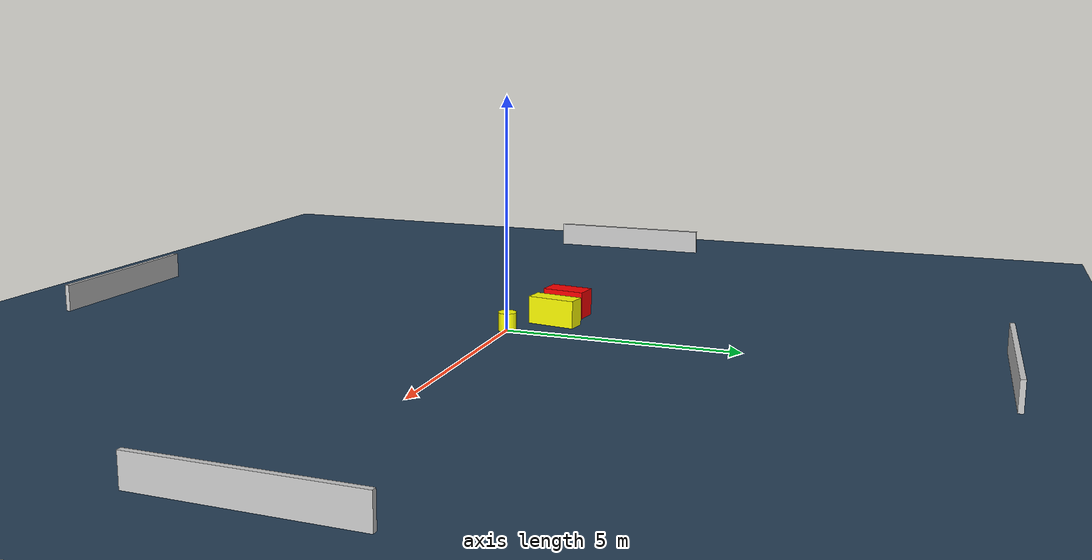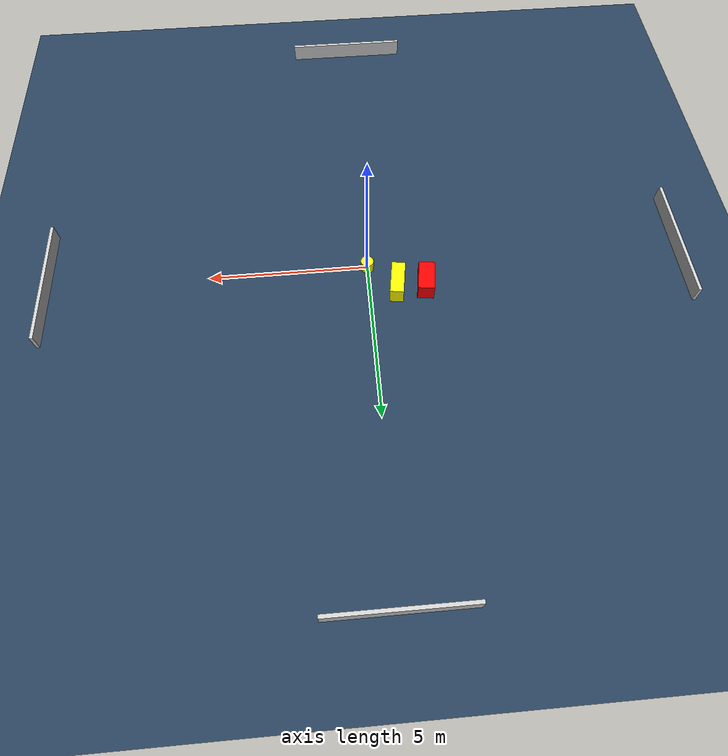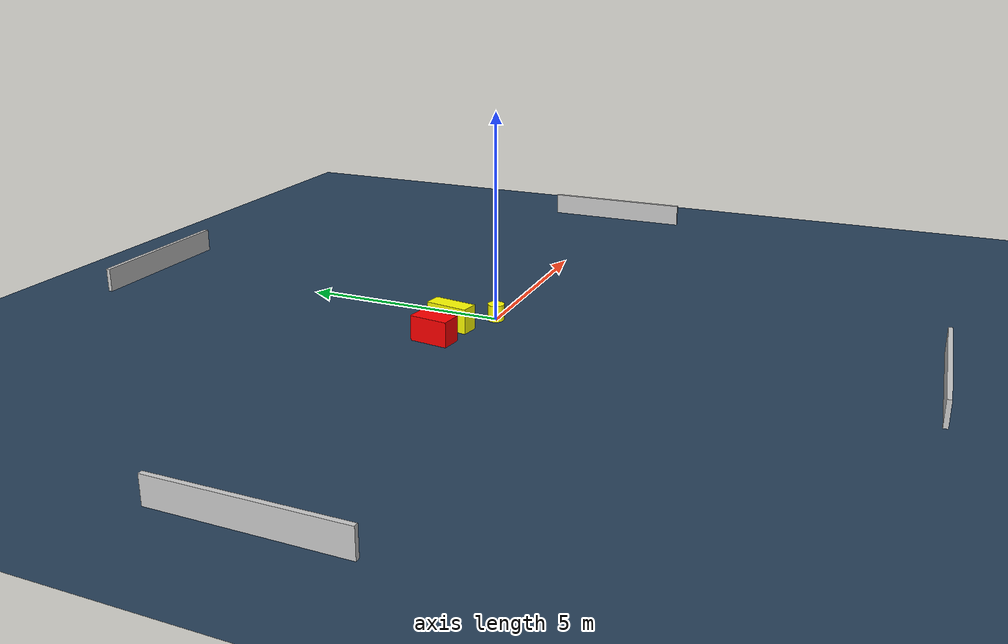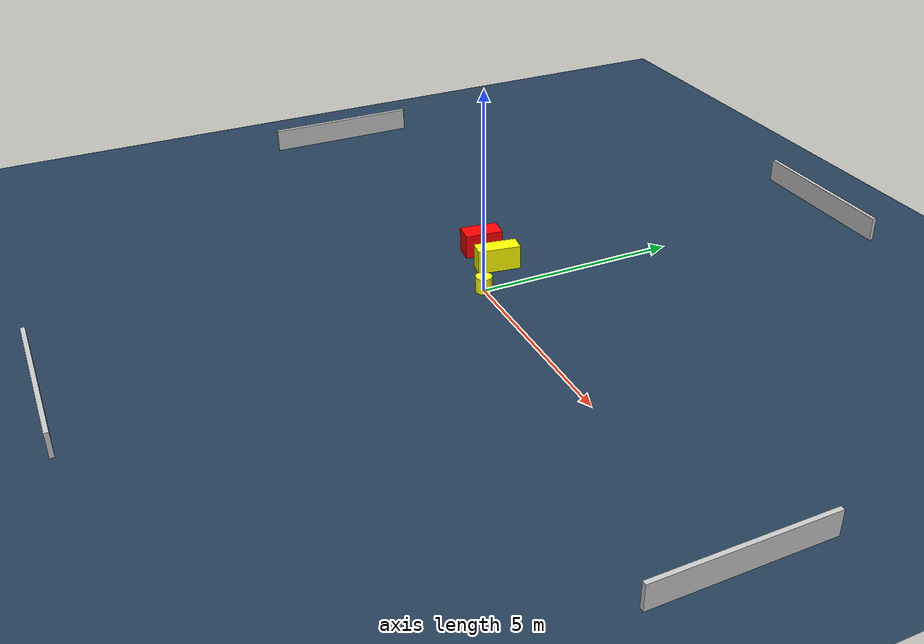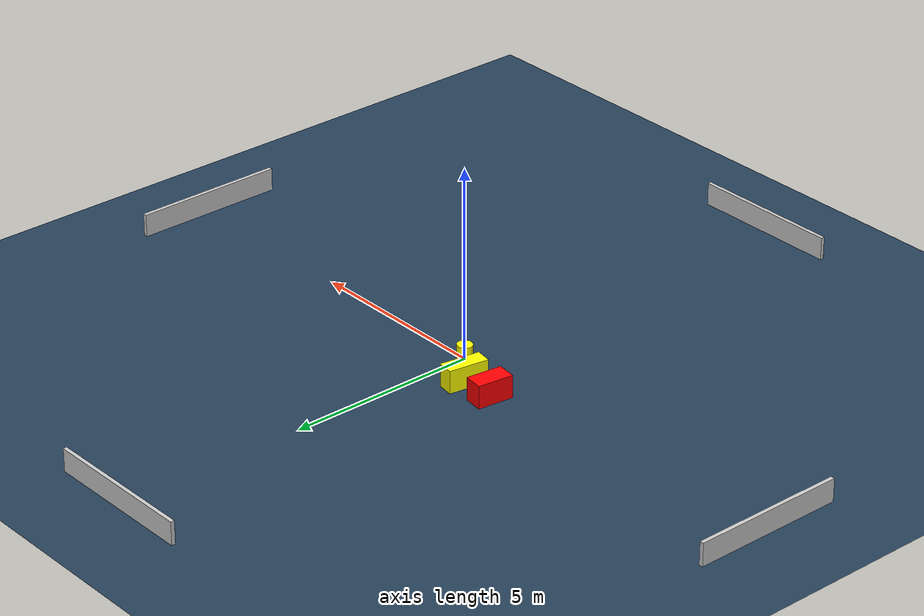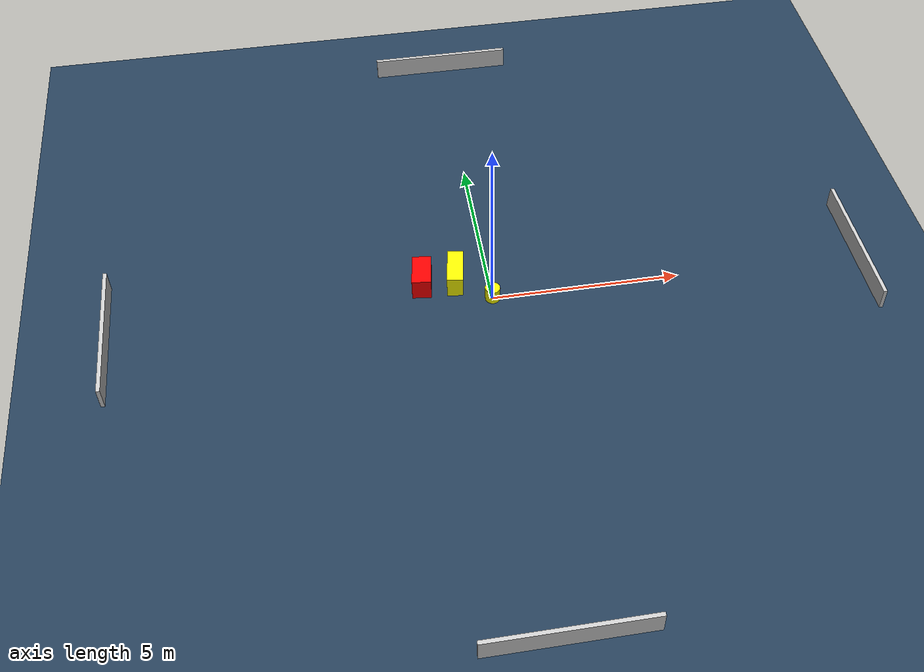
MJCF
<?xml version="1.0" ?>
<mujoco model="generated_environment">
  <option timestep="0.01" integrator="RK4" cone="elliptic"/>
  <default>
    <geom density="1"/>
  </default>
  <asset>
    <texture builtin="gradient" height="3072" name="skybox" rgb1="0.3 0.5 0.7" rgb2="0 0 0" type="skybox" width="512"/>
    <texture builtin="checker" height="300" name="groundplane" rgb1="0.2 0.3 0.4" rgb2="0.1 0.2 0.3" type="2d" width="300"/>
    <material name="groundplane" reflectance="0.2" texrepeat="5 5" texture="groundplane"/>
  </asset>
  <worldbody>
    <light dir="0 0 -1" directional="true" pos="0 0 1.5"/>
    <geom condim="3" friction="0.5 0.005 0.001" material="groundplane" name="floor" pos="0 0 0" size="0 0 0.05" type="plane"/>
    <body name="walls">
      <geom name="wall_1" condim="4" pos="-10.0 0.0 0.3" rgba="0.800000011920929 0.800000011920929 0.800000011920929 1.0" size="0.05 2.0 0.3" type="box"/>
      <geom name="wall_2" condim="4" pos="10.0 0.0 0.3" rgba="0.800000011920929 0.800000011920929 0.800000011920929 1.0" size="0.05 2.0 0.3" type="box"/>
      <geom name="wall_3" condim="4" pos="0.0 -10.0 0.3" rgba="0.800000011920929 0.800000011920929 0.800000011920929 1.0" size="2.0 0.05 0.3" type="box"/>
      <geom name="wall_4" condim="4" pos="0.0 10.0 0.3" rgba="0.800000011920929 0.800000011920929 0.800000011920929 1.0" size="2.0 0.05 0.3" type="box"/>
    </body>
    <body name="robot">
      <joint name="joint_x" type="slide" pos="0 0 0" axis="1 0 0"/>
      <joint name="joint_y" type="slide" pos="0 0 0" axis="0 1 0"/>
      <geom name="robot" type="cylinder" pos="0.0 0.0 0.2" size="0.2 0.2 0.0" mass="5.0" friction="1.0 0.005 0.0001" condim="4" rgba="1.0 1.0 0.0 1.0"/>
    </body>
    <body name="obstacle_1_movable">
      <geom name="obstacle_1_movable" condim="4" pos="-0.8794895561208391 0.7760683367448702 0.3" euler="0 0 351.18427284389725" friction="0.0 0.005 0.001" rgba="1.0 1.0 0.0 1.0" size="0.21026098233857823 0.5294656877403875 0.3" type="box" mass="0.1"/>
      <joint type="free"/>
    </body>
    <body name="obstacle_2_static">
      <geom name="obstacle_2_static" condim="4" pos="-1.7767569317537972 0.7774081337550851 0.3" euler="0 0 82.51930811053532" friction="0.0 0.005 0.001" rgba="1.0 0.0 0.0 1.0" size="0.47060760910475197 0.25341363323805866 0.3" type="box"/>
    </body>
  </worldbody>
  <actuator>
    <motor name="actuator_x" joint="joint_x" gear="1" ctrlrange="-1 1"/>
    <motor name="actuator_y" joint="joint_y" gear="1" ctrlrange="-1 1"/>
  </actuator>
</mujoco>
